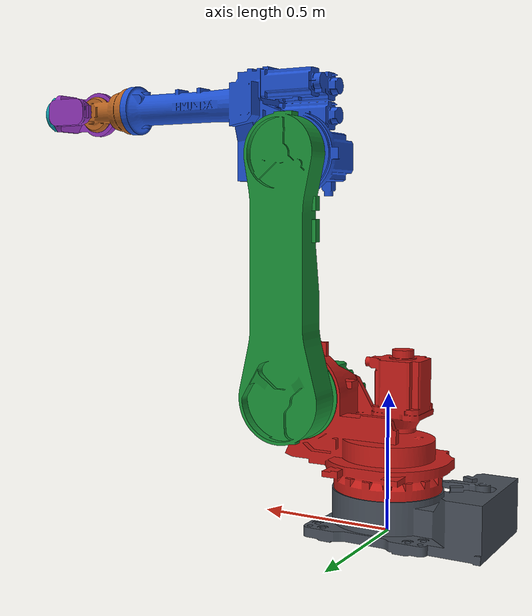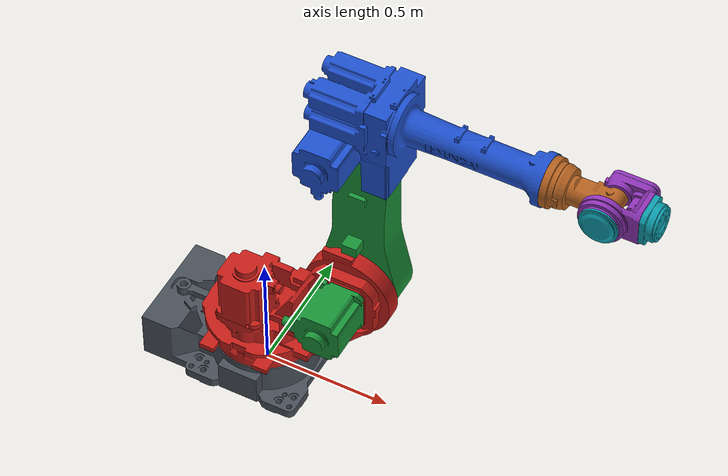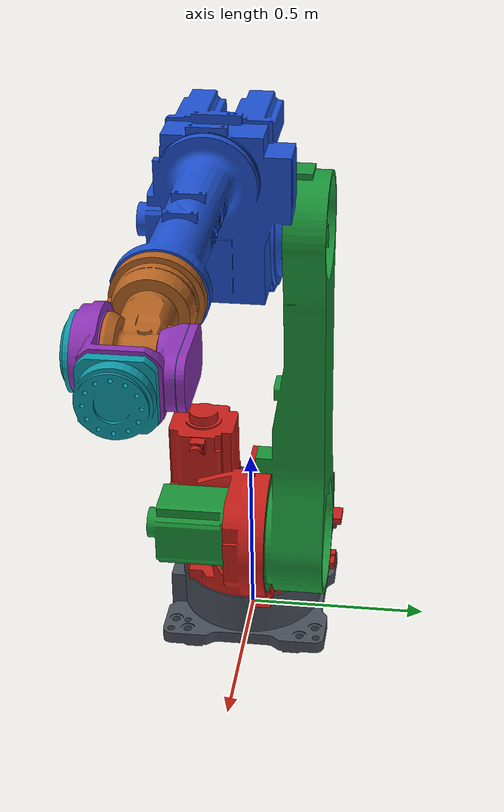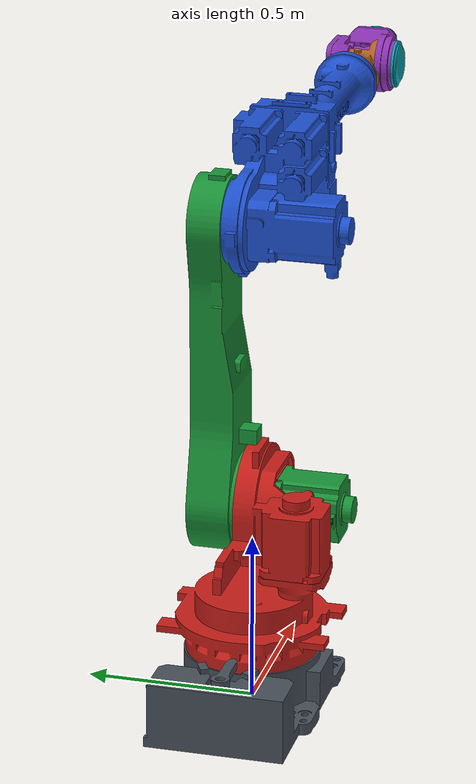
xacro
<?xml version="1.0"?>
<robot xmlns:xacro="http://www.ros.org/wiki/xacro"
       name="ys080_hh050_debug">

  <xacro:arg name="mesh_root"
             default="package://robot_bridge/meshes/ys080_hh050"/>

  <material name="base_gray">
    <color rgba="0.28 0.31 0.35 1.0"/>
  </material>
  <material name="joint_1_red">
    <color rgba="0.78 0.12 0.10 1.0"/>
  </material>
  <material name="joint_2_green">
    <color rgba="0.10 0.58 0.22 1.0"/>
  </material>
  <material name="joint_3_blue">
    <color rgba="0.12 0.32 0.82 1.0"/>
  </material>
  <material name="joint_4_bronze">
    <color rgba="0.72 0.39 0.13 1.0"/>
  </material>
  <material name="joint_5_violet">
    <color rgba="0.56 0.20 0.72 1.0"/>
  </material>
  <material name="joint_6_cyan">
    <color rgba="0.05 0.62 0.68 1.0"/>
  </material>

  <xacro:macro name="cad_link" params="name mesh offset material_name">
    <link name="${name}">
      <visual>
        <origin xyz="${offset}" rpy="0 0 0"/>
        <geometry>
          <mesh filename="$(arg mesh_root)/${mesh}.obj"
                scale="0.001 0.001 0.001"/>
        </geometry>
        <material name="${material_name}"/>
      </visual>
    </link>
  </xacro:macro>

  <xacro:cad_link name="base_link" mesh="BASE"
                  offset="0 0 0" material_name="base_gray"/>
  <xacro:cad_link name="link_1" mesh="J1_S"
                  offset="0 0 -0.280" material_name="joint_1_red"/>
  <xacro:cad_link name="link_2" mesh="J2_H"
                  offset="-0.320 -0.110 -0.480"
                  material_name="joint_2_green"/>
  <xacro:cad_link name="link_3" mesh="J3_V"
                  offset="-0.320 -0.070 -1.350"
                  material_name="joint_3_blue"/>
  <xacro:cad_link name="link_4" mesh="J4_R2"
                  offset="-1.217 0 -1.550"
                  material_name="joint_4_bronze"/>
  <xacro:cad_link name="link_5" mesh="J5_B"
                  offset="-1.350 0 -1.550"
                  material_name="joint_5_violet"/>
  <xacro:cad_link name="link_6" mesh="J6_R1"
                  offset="-1.392 0 -1.550"
                  material_name="joint_6_cyan"/>

  <joint name="joint_1" type="revolute">
    <parent link="base_link"/>
    <child link="link_1"/>
    <origin xyz="0 0 0.280" rpy="0 0 0"/>
    <axis xyz="0 0 -1"/>
    <limit lower="-3.141593" upper="3.141593"
           effort="1000" velocity="2.967060"/>
  </joint>

  <joint name="joint_2" type="revolute">
    <parent link="link_1"/>
    <child link="link_2"/>
    <origin xyz="0.320 0.110 0.200" rpy="0 0 0"/>
    <axis xyz="0 -1 0"/>
    <limit lower="-1.134464" upper="2.967060"
           effort="1000" velocity="2.443461"/>
  </joint>

  <joint name="joint_3" type="revolute">
    <parent link="link_2"/>
    <child link="link_3"/>
    <origin xyz="0 -0.040 0.870" rpy="0 0 0"/>
    <axis xyz="0 1 0"/>
    <limit lower="-1.396263" upper="3.141593"
           effort="1000" velocity="2.792527"/>
  </joint>

  <joint name="joint_4" type="revolute">
    <parent link="link_3"/>
    <child link="link_4"/>
    <origin xyz="0.897 -0.070 0.200" rpy="0 0 0"/>
    <axis xyz="-1 0 0"/>
    <limit lower="-6.283185" upper="6.283185"
           effort="500" velocity="4.014257"/>
  </joint>

  <joint name="joint_5" type="revolute">
    <parent link="link_4"/>
    <child link="link_5"/>
    <origin xyz="0.133 0 0" rpy="0 0 0"/>
    <axis xyz="0 -1 0"/>
    <limit lower="-2.181662" upper="2.181662"
           effort="500" velocity="4.014257"/>
  </joint>

  <joint name="joint_6" type="revolute">
    <parent link="link_5"/>
    <child link="link_6"/>
    <origin xyz="0.042 0 0" rpy="0 0 0"/>
    <axis xyz="-1 0 0"/>
    <limit lower="-6.283185" upper="6.283185"
           effort="300" velocity="6.108652"/>
  </joint>

</robot>
